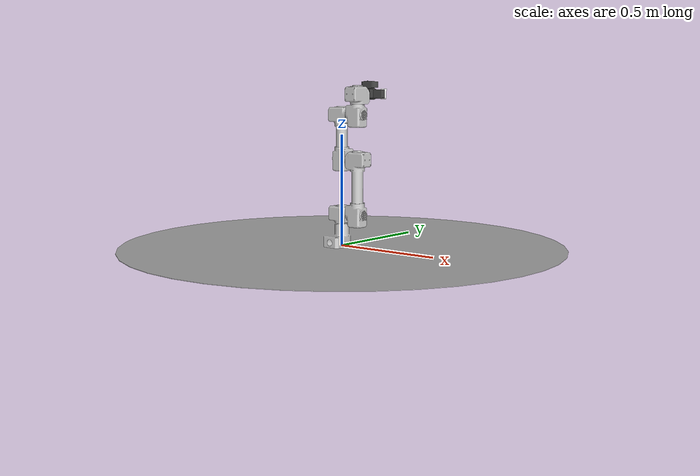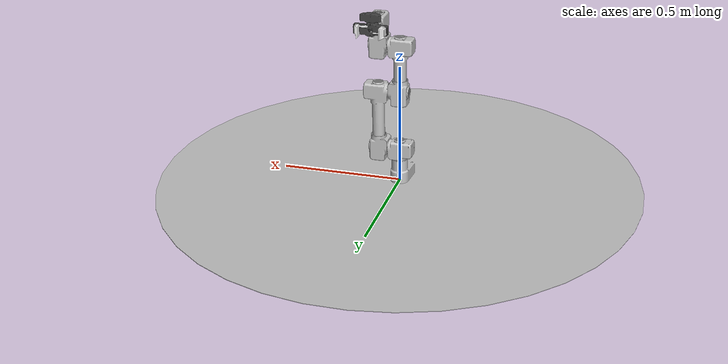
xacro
<?xml version="1.0"?>
<robot xmlns:xacro="http://www.ros.org/wiki/xacro" name="arm_description">
    <xacro:arg name="initial_positions_file" default="initial_positions.yaml" />

    <!-- Import arm_description urdf file -->
    <xacro:include filename="$(find arm_description)/urdf/arm_description.urdf.xacro" />

    <!-- Import control_xacro -->
    <xacro:include filename="arm_description.ros2_control.xacro" />

    <xacro:arm_description_ros2_control name="FakeSystem" initial_positions_file="$(arg initial_positions_file)"/>

</robot>

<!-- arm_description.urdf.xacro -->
<robot name="arm_description">
  <link name="world" />
  <joint name="world_to_base" type="fixed">
    <parent link="world" />
    <child link="base_link" />
    <origin xyz="0 0 0" rpy="0 0 0" />
  </joint>
  <link
    name="base_link">
    <inertial>
      <origin
        xyz="-7.33667051250331E-07 -0.000806795620128295 0.000435035650231941"
        rpy="0 0 0" />
      <mass
        value="6.52720522593112" />
      <inertia
        ixx="1.57111264401313"
        ixy="3.5412325745297E-08"
        ixz="3.43473341339994E-09"
        iyy="1.57098803430044"
        iyz="-1.30977759884657E-05"
        izz="3.14201095739205" />
    </inertial>
    <visual>
      <origin
        xyz="0 0 0"
        rpy="0 0 0" />
      <geometry>
        <mesh
          filename="package://arm_description/meshes/base_link.STL" />
      </geometry>
      <material
        name="">
        <color
          rgba="0.752941176470588 0.752941176470588 0.752941176470588 1" />
      </material>
    </visual>
    <collision>
      <origin
        xyz="0 0 0"
        rpy="0 0 0" />
      <geometry>
        <mesh
          filename="package://arm_description/meshes/base_link.STL" />
      </geometry>
    </collision>
  </link>
  <link
    name="link_1">
    <inertial>
      <origin
        xyz="0.00362239334791756 -3.81795642908495E-05 0.140982620125569"
        rpy="0 0 0" />
      <mass
        value="0.141639977131661" />
      <inertia
        ixx="8.98141382308835E-05"
        ixy="1.13468736177936E-08"
        ixz="3.51673525250542E-06"
        iyy="9.15722320805618E-05"
        iyz="3.65425922924879E-08"
        izz="0.000140053948831358" />
    </inertial>
    <visual>
      <origin
        xyz="0 0 0"
        rpy="0 0 0" />
      <geometry>
        <mesh
          filename="package://arm_description/meshes/link_1.STL" />
      </geometry>
      <material
        name="">
        <color
          rgba="0.752941176470588 0.752941176470588 0.752941176470588 1" />
      </material>
    </visual>
    <collision>
      <origin
        xyz="0 0 0"
        rpy="0 0 0" />
      <geometry>
        <mesh
          filename="package://arm_description/meshes/link_1.STL" />
      </geometry>
    </collision>
  </link>
  <joint
    name="joint_1"
    type="revolute">
    <origin
      xyz="0 0 0"
      rpy="0 0 0" />
    <parent
      link="base_link" />
    <child
      link="link_1" />
    <axis
      xyz="0 0 1" />
    <limit
      lower="-1.57"
      upper="3.14"
      effort="200"
      velocity="10" />
  </joint>
  <link
    name="link_2">
    <inertial>
      <origin
        xyz="7.53940182483814E-06 0.00505678180282543 0.0842129380713662"
        rpy="0 0 0" />
      <mass
        value="0.143507549223786" />
      <inertia
        ixx="9.77478537604331E-05"
        ixy="-1.67427633619266E-08"
        ixz="-1.80834387568079E-08"
        iyy="9.07459548934156E-05"
        iyz="3.57849204977034E-06"
        izz="0.000147113534917112" />
    </inertial>
    <visual>
      <origin
        xyz="0 0 0"
        rpy="0 0 0" />
      <geometry>
        <mesh
          filename="package://arm_description/meshes/link_2.STL" />
      </geometry>
      <material
        name="">
        <color
          rgba="0.752941176470588 0.752941176470588 0.752941176470588 1" />
      </material>
    </visual>
    <collision>
      <origin
        xyz="0 0 0"
        rpy="0 0 0" />
      <geometry>
        <mesh
          filename="package://arm_description/meshes/link_2.STL" />
      </geometry>
    </collision>
  </link>
  <joint
    name="joint_2"
    type="revolute">
    <origin
      xyz="0 0 0.1464"
      rpy="1.5707963267949 0 1.5707963267949" />
    <parent
      link="link_1" />
    <child
      link="link_2" />
    <axis
      xyz="0 0 1" />
    <limit
      lower="-1.57"
      upper="1.57"
      effort="200"
      velocity="10" />
  </joint>
  <link
    name="link_3">
    <inertial>
      <origin
        xyz="-0.003307750182467 -1.51931359661239E-05 -0.215292675404989"
        rpy="0 0 0" />
      <mass
        value="0.173954075434222" />
      <inertia
        ixx="0.000144630940442922"
        ixy="-1.32847181188018E-07"
        ixz="3.53526021477459E-06"
        iyy="0.000147338139082199"
        iyz="-6.41277682296157E-09"
        izz="0.000161646518516295" />
    </inertial>
    <visual>
      <origin
        xyz="0 0 0"
        rpy="0 0 0" />
      <geometry>
        <mesh
          filename="package://arm_description/meshes/link_3.STL" />
      </geometry>
      <material
        name="">
        <color
          rgba="0.752941176470588 0.752941176470588 0.752941176470588 1" />
      </material>
    </visual>
    <collision>
      <origin
        xyz="0 0 0"
        rpy="0 0 0" />
      <geometry>
        <mesh
          filename="package://arm_description/meshes/link_3.STL" />
      </geometry>
    </collision>
  </link>
  <joint
    name="joint_3"
    type="revolute">
    <origin
      xyz="0 0 0.0894999999999936"
      rpy="1.5707963267949 -1.5707963267949 0" />
    <parent
      link="link_2" />
    <child
      link="link_3" />
    <axis
      xyz="0 0 -1" />
    <limit
      lower="-3.14"
      upper="3.14"
      effort="200"
      velocity="10" />
  </joint>
  <link
    name="link_4">
    <inertial>
      <origin
        xyz="-3.69732387454497E-05 -0.00339659287195776 0.0858843482112302"
        rpy="0 0 0" />
      <mass
        value="0.148325167434625" />
      <inertia
        ixx="9.83824919124808E-05"
        ixy="-8.95348942307497E-09"
        ixz="3.53186062441247E-08"
        iyy="9.2436601034005E-05"
        iyz="-3.58230406317328E-06"
        izz="0.000148216123686448" />
    </inertial>
    <visual>
      <origin
        xyz="0 0 0"
        rpy="0 0 0" />
      <geometry>
        <mesh
          filename="package://arm_description/meshes/link_4.STL" />
      </geometry>
      <material
        name="">
        <color
          rgba="0.752941176470588 0.752941176470588 0.752941176470588 1" />
      </material>
    </visual>
    <collision>
      <origin
        xyz="0 0 0"
        rpy="0 0 0" />
      <geometry>
        <mesh
          filename="package://arm_description/meshes/link_4.STL" />
      </geometry>
    </collision>
  </link>
  <joint
    name="joint_4"
    type="revolute">
    <origin
      xyz="0 0 -0.24698520586243"
      rpy="1.5707963267949 0 -1.5707963267949" />
    <parent
      link="link_3" />
    <child
      link="link_4" />
    <axis
      xyz="0 0 1" />
    <limit
      lower="-2.09"
      upper="2.09"
      effort="200"
      velocity="10" />
  </joint>
  <link
    name="link_5">
    <inertial>
      <origin
        xyz="0.00206792792814745 -2.76614863313901E-05 0.175346578298025"
        rpy="0 0 0" />
      <mass
        value="0.170949127914978" />
      <inertia
        ixx="0.000112877897565311"
        ixy="1.33876282485743E-07"
        ixz="3.50583392437512E-06"
        iyy="0.00011462399449212"
        iyz="-1.95086999820293E-08"
        izz="0.000157908884644634" />
    </inertial>
    <visual>
      <origin
        xyz="0 0 0"
        rpy="0 0 0" />
      <geometry>
        <mesh
          filename="package://arm_description/meshes/link_5.STL" />
      </geometry>
      <material
        name="">
        <color
          rgba="0.752941176470588 0.752941176470588 0.752941176470588 1" />
      </material>
    </visual>
    <collision>
      <origin
        xyz="0 0 0"
        rpy="0 0 0" />
      <geometry>
        <mesh
          filename="package://arm_description/meshes/link_5.STL" />
      </geometry>
    </collision>
  </link>
  <joint
    name="joint_5"
    type="revolute">
    <origin
      xyz="0 0 0.0909852058624292"
      rpy="1.5707963267949 1.5707963267949 0" />
    <parent
      link="link_4" />
    <child
      link="link_5" />
    <axis
      xyz="0 0 1" />
    <limit
      lower="-3.14"
      upper="3.14"
      effort="200"
      velocity="10" />
  </joint>
  <link
    name="link_6">
    <inertial>
      <origin
        xyz="4.1108599771425E-05 0.00257530402715245 0.0857796541219091"
        rpy="0 0 0" />
      <mass
        value="0.145620756588228" />
      <inertia
        ixx="9.17894079115679E-05"
        ixy="-9.76230646695244E-09"
        ixz="-3.67352230545461E-08"
        iyy="9.06990729876771E-05"
        iyz="3.51811623142638E-06"
        izz="0.000140766609119444" />
    </inertial>
    <visual>
      <origin
        xyz="0 0 0"
        rpy="0 0 0" />
      <geometry>
        <mesh
          filename="package://arm_description/meshes/link_6.STL" />
      </geometry>
      <material
        name="">
        <color
          rgba="0.752941176470588 0.752941176470588 0.752941176470588 1" />
      </material>
    </visual>
    <collision>
      <origin
        xyz="0 0 0"
        rpy="0 0 0" />
      <geometry>
        <mesh
          filename="package://arm_description/meshes/link_6.STL" />
      </geometry>
    </collision>
  </link>
  <joint
    name="joint_6"
    type="revolute">
    <origin
      xyz="0 0 0.19698520586243"
      rpy="1.5707963267949 0 1.5707963267949" />
    <parent
      link="link_5" />
    <child
      link="link_6" />
    <axis
      xyz="0 0 1" />
    <limit
      lower="-2.09"
      upper="2.09"
      effort="200"
      velocity="10" />
  </joint>
  <link
    name="link_7">
    <inertial>
      <origin
        xyz="3.04281750937718E-05 0.00389253372731124 -0.0873287224716446"
        rpy="0 0 0" />
      <mass
        value="0.208798877978331" />
      <inertia
        ixx="0.000104218009947256"
        ixy="1.7457482471701E-08"
        ixz="5.38289410367352E-08"
        iyy="0.000112327075315552"
        iyz="3.51730775061429E-06"
        izz="0.00015338924637272" />
    </inertial>
    <visual>
      <origin
        xyz="0 0 0"
        rpy="0 0 0" />
      <geometry>
        <mesh
          filename="package://arm_description/meshes/link_7.STL" />
      </geometry>
      <material
        name="">
        <color
          rgba="0.752941176470588 0.752941176470588 0.752941176470588 1" />
      </material>
    </visual>
    <collision>
      <origin
        xyz="0 0 0"
        rpy="0 0 0" />
      <geometry>
        <mesh
          filename="package://arm_description/meshes/link_7.STL" />
      </geometry>
    </collision>
  </link>
  <joint
    name="joint_7"
    type="revolute">
    <origin
      xyz="0 0 0.0909852058624294"
      rpy="1.5707963267949 -1.5707963267949 0" />
    <parent
      link="link_6" />
    <child
      link="link_7" />
    <axis
      xyz="0 0 -1" />
    <limit
      lower="-3.14"
      upper="3.14"
      effort="200"
      velocity="10" />
  </joint>
  <link
    name="tool_link">
    <inertial>
      <origin
        xyz="7.36277588972434E-06 9.79545500175982E-05 0.0224262437077161"
        rpy="0 0 0" />
      <mass
        value="0.125010719073419" />
      <inertia
        ixx="2.2629392203171E-05"
        ixy="2.32911033544108E-06"
        ixz="8.59002610735225E-10"
        iyy="0.00012815635241114"
        iyz="5.55851104808758E-09"
        izz="0.000144851958518917" />
    </inertial>
    <visual>
      <origin
        xyz="0 0 0"
        rpy="0 0 0" />
      <geometry>
        <mesh
          filename="package://arm_description/meshes/tool_link.STL" />
      </geometry>
      <material
        name="">
        <color
          rgba="0.250980392156863 0.250980392156863 0.250980392156863 1" />
      </material>
    </visual>
    <collision>
      <origin
        xyz="0 0 0"
        rpy="0 0 0" />
      <geometry>
        <mesh
          filename="package://arm_description/meshes/tool_link.STL" />
      </geometry>
    </collision>
  </link>
  <joint
    name="tool_joint"
    type="revolute">
    <origin
      xyz="0 -0.106485205862441 -0.0909852058624315"
      rpy="-1.5707963267949 0 0" />
    <parent
      link="link_7" />
    <child
      link="tool_link" />
    <axis
      xyz="0 0 -1" />
    <limit
      lower="-3.14"
      upper="3.14"
      effort="200"
      velocity="5" />
  </joint>
  <link
    name="grip_left_link">
    <inertial>
      <origin
        xyz="-0.0472057386689509 -0.00225339802100599 0.00189665039114234"
        rpy="0 0 0" />
      <mass
        value="0.0199960953484895" />
      <inertia
        ixx="6.8520261009693E-06"
        ixy="6.28134392390056E-07"
        ixz="-1.03874099356176E-06"
        iyy="6.67336841270338E-06"
        iyz="8.79996273613866E-07"
        izz="5.95029100616287E-06" />
    </inertial>
    <visual>
      <origin
        xyz="0 0 0"
        rpy="0 0 0" />
      <geometry>
        <mesh
          filename="package://arm_description/meshes/grip_left_link.STL" />
      </geometry>
      <material
        name="">
        <color
          rgba="1 1 1 1" />
      </material>
    </visual>
    <collision>
      <origin
        xyz="0 0 0"
        rpy="0 0 0" />
      <geometry>
        <mesh
          filename="package://arm_description/meshes/grip_left_link.STL" />
      </geometry>
    </collision>
  </link>
  <joint
    name="grip_left_joint"
    type="prismatic">
    <origin
      xyz="0 0 -0.0135"
      rpy="0 0 0" />
    <parent
      link="tool_link" />
    <child
      link="grip_left_link" />
    <axis
      xyz="-1 0 0" />
    <limit
      lower="-0.04"
      upper="0"
      effort="1"
      velocity="5" />
  </joint>
  <link
    name="grip_right_link">
    <inertial>
      <origin
        xyz="0.0436880923241129 0.0022533980210061 0.00189665039114277"
        rpy="0 0 0" />
      <mass
        value="0.0199960953484896" />
      <inertia
        ixx="6.85202610096932E-06"
        ixy="6.28134392390057E-07"
        ixz="1.03874099356176E-06"
        iyy="6.67336841270338E-06"
        iyz="-8.7999627361387E-07"
        izz="5.95029100616288E-06" />
    </inertial>
    <visual>
      <origin
        xyz="0 0 0"
        rpy="0 0 0" />
      <geometry>
        <mesh
          filename="package://arm_description/meshes/grip_right_link.STL" />
      </geometry>
      <material
        name="">
        <color
          rgba="1 1 1 1" />
      </material>
    </visual>
    <collision>
      <origin
        xyz="0 0 0"
        rpy="0 0 0" />
      <geometry>
        <mesh
          filename="package://arm_description/meshes/grip_right_link.STL" />
      </geometry>
    </collision>
  </link>
  <joint
    name="grip_right_joint"
    type="prismatic">
    <origin
      xyz="0 0 -0.0135"
      rpy="0 0 0" />
    <parent
      link="tool_link" />
    <child
      link="grip_right_link" />
    <axis
      xyz="-1 0 0" />
    <limit
      lower="0"
      upper="0.04"
      effort="1"
      velocity="5" />
  </joint>
  <link
    name="cam_link">
    <inertial>
      <origin
        xyz="0.00500000001588299 0.0402001871503386 0.0453894603646021"
        rpy="0 0 0" />
      <mass
        value="0.0659679326018229" />
      <inertia
        ixx="9.59737991069113E-06"
        ixy="-1.16335497990539E-13"
        ixz="-4.4922770867215E-16"
        iyy="3.38968989688438E-05"
        iyz="3.22132929115363E-08"
        izz="3.60134968230216E-05" />
    </inertial>
    <visual>
      <origin
        xyz="0 0 0"
        rpy="0 0 0" />
      <geometry>
        <mesh
          filename="package://arm_description/meshes/cam_link.STL" />
      </geometry>
      <material
        name="">
        <color
          rgba="0.250980392156863 0.250980392156863 0.250980392156863 1" />
      </material>
    </visual>
    <collision>
      <origin
        xyz="0 0 0"
        rpy="0 0 0" />
      <geometry>
        <mesh
          filename="package://arm_description/meshes/cam_link.STL" />
      </geometry>
    </collision>
  </link>
  <joint
    name="cam_joint"
    type="fixed">
    <origin
      xyz="0 0 -0.0135"
      rpy="0 0 0" />
    <parent
      link="tool_link" />
    <child
      link="cam_link" />
    <axis
      xyz="0 0 0" />
  </joint>
</robot>
